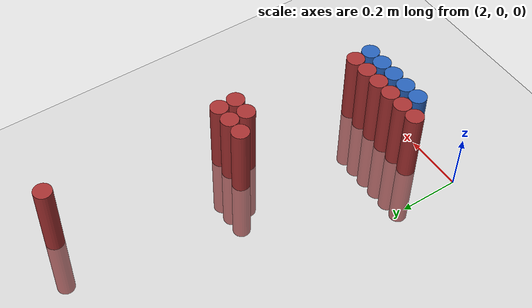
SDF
<sdf version="1.6">
 <world name="default">
  <model name="ground_plane">
   <static>1</static>
   <link name="link">
    <collision name="collision">
     <geometry><plane><normal>0 0 1</normal><size>100 100</size></plane></geometry>
     <surface><friction><ode><mu>100</mu><mu2>50</mu2></ode></friction></surface>
    </collision>
    <visual name="visual">
     <cast_shadows>0</cast_shadows>
     <geometry><plane><normal>0 0 1</normal><size>100 100</size></plane></geometry>
     <material>
      <script><uri>file://media/materials/scripts/gazebo.material</uri><name>Gazebo/Grey</name></script>
     </material>
    </visual>
   </link>
  </model>
  <model name="unit_cylinder_170">
   <static>1</static>
   <pose>2.490000 1.170000 0.000000 0.000000 0.000000 0.000000</pose>
   <link name="link">
    <inertial>
     <mass>1</mass>
     <inertia><ixx>0.145833</ixx><ixy>0</ixy><ixz>0</ixz><iyy>0.145833</iyy><iyz>0</iyz><izz>0.125</izz></inertia>
    </inertial>
    <collision name="collision">
     <geometry><cylinder><radius>0.030000</radius><length>0.5</length></cylinder></geometry>
    </collision>
    <visual name="visual">
     <geometry><cylinder><radius>0.030000</radius><length>0.5</length></cylinder></geometry>
     <material>
      <ambient>0.648000 0.192000 0.192000 1</ambient>
      <diffuse>0.648000 0.192000 0.192000 1</diffuse>
     </material>
     <material>
      <script><name>Gazebo/Grey</name><uri>file://media/materials/scripts/gazebo.material</uri></script>
     </material>
    </visual>
   </link>
  </model>
  <model name="unit_cylinder_187">
   <static>1</static>
   <pose>2.370000 0.570000 0.000000 0.000000 0.000000 0.000000</pose>
   <link name="link">
    <inertial>
     <mass>1</mass>
     <inertia><ixx>0.145833</ixx><ixy>0</ixy><ixz>0</ixz><iyy>0.145833</iyy><iyz>0</iyz><izz>0.125</izz></inertia>
    </inertial>
    <collision name="collision">
     <geometry><cylinder><radius>0.030000</radius><length>0.5</length></cylinder></geometry>
    </collision>
    <visual name="visual">
     <geometry><cylinder><radius>0.030000</radius><length>0.5</length></cylinder></geometry>
     <material>
      <ambient>0.648000 0.192000 0.192000 1</ambient>
      <diffuse>0.648000 0.192000 0.192000 1</diffuse>
     </material>
     <material>
      <script><name>Gazebo/Grey</name><uri>file://media/materials/scripts/gazebo.material</uri></script>
     </material>
    </visual>
   </link>
  </model>
  <model name="unit_cylinder_188">
   <static>1</static>
   <pose>2.430000 0.570000 0.000000 0.000000 0.000000 0.000000</pose>
   <link name="link">
    <inertial>
     <mass>1</mass>
     <inertia><ixx>0.145833</ixx><ixy>0</ixy><ixz>0</ixz><iyy>0.145833</iyy><iyz>0</iyz><izz>0.125</izz></inertia>
    </inertial>
    <collision name="collision">
     <geometry><cylinder><radius>0.030000</radius><length>0.5</length></cylinder></geometry>
    </collision>
    <visual name="visual">
     <geometry><cylinder><radius>0.030000</radius><length>0.5</length></cylinder></geometry>
     <material>
      <ambient>0.648000 0.192000 0.192000 1</ambient>
      <diffuse>0.648000 0.192000 0.192000 1</diffuse>
     </material>
     <material>
      <script><name>Gazebo/Grey</name><uri>file://media/materials/scripts/gazebo.material</uri></script>
     </material>
    </visual>
   </link>
  </model>
  <model name="unit_cylinder_189">
   <static>1</static>
   <pose>2.490000 0.570000 0.000000 0.000000 0.000000 0.000000</pose>
   <link name="link">
    <inertial>
     <mass>1</mass>
     <inertia><ixx>0.145833</ixx><ixy>0</ixy><ixz>0</ixz><iyy>0.145833</iyy><iyz>0</iyz><izz>0.125</izz></inertia>
    </inertial>
    <collision name="collision">
     <geometry><cylinder><radius>0.030000</radius><length>0.5</length></cylinder></geometry>
    </collision>
    <visual name="visual">
     <geometry><cylinder><radius>0.030000</radius><length>0.5</length></cylinder></geometry>
     <material>
      <ambient>0.648000 0.192000 0.192000 1</ambient>
      <diffuse>0.648000 0.192000 0.192000 1</diffuse>
     </material>
     <material>
      <script><name>Gazebo/Grey</name><uri>file://media/materials/scripts/gazebo.material</uri></script>
     </material>
    </visual>
   </link>
  </model>
  <model name="unit_cylinder_193">
   <static>1</static>
   <pose>2.430000 0.510000 0.000000 0.000000 0.000000 0.000000</pose>
   <link name="link">
    <inertial>
     <mass>1</mass>
     <inertia><ixx>0.145833</ixx><ixy>0</ixy><ixz>0</ixz><iyy>0.145833</iyy><iyz>0</iyz><izz>0.125</izz></inertia>
    </inertial>
    <collision name="collision">
     <geometry><cylinder><radius>0.030000</radius><length>0.5</length></cylinder></geometry>
    </collision>
    <visual name="visual">
     <geometry><cylinder><radius>0.030000</radius><length>0.5</length></cylinder></geometry>
     <material>
      <ambient>0.648000 0.192000 0.192000 1</ambient>
      <diffuse>0.648000 0.192000 0.192000 1</diffuse>
     </material>
     <material>
      <script><name>Gazebo/Grey</name><uri>file://media/materials/scripts/gazebo.material</uri></script>
     </material>
    </visual>
   </link>
  </model>
  <model name="unit_cylinder_194">
   <static>1</static>
   <pose>2.490000 0.510000 0.000000 0.000000 0.000000 0.000000</pose>
   <link name="link">
    <inertial>
     <mass>1</mass>
     <inertia><ixx>0.145833</ixx><ixy>0</ixy><ixz>0</ixz><iyy>0.145833</iyy><iyz>0</iyz><izz>0.125</izz></inertia>
    </inertial>
    <collision name="collision">
     <geometry><cylinder><radius>0.030000</radius><length>0.5</length></cylinder></geometry>
    </collision>
    <visual name="visual">
     <geometry><cylinder><radius>0.030000</radius><length>0.5</length></cylinder></geometry>
     <material>
      <ambient>0.648000 0.192000 0.192000 1</ambient>
      <diffuse>0.648000 0.192000 0.192000 1</diffuse>
     </material>
     <material>
      <script><name>Gazebo/Grey</name><uri>file://media/materials/scripts/gazebo.material</uri></script>
     </material>
    </visual>
   </link>
  </model>
  <model name="unit_cylinder_214">
   <static>1</static>
   <pose>2.130000 0.090000 0.000000 0.000000 0.000000 0.000000</pose>
   <link name="link">
    <inertial>
     <mass>1</mass>
     <inertia><ixx>0.145833</ixx><ixy>0</ixy><ixz>0</ixz><iyy>0.145833</iyy><iyz>0</iyz><izz>0.125</izz></inertia>
    </inertial>
    <collision name="collision">
     <geometry><cylinder><radius>0.030000</radius><length>0.5</length></cylinder></geometry>
    </collision>
    <visual name="visual">
     <geometry><cylinder><radius>0.030000</radius><length>0.5</length></cylinder></geometry>
     <material>
      <ambient>0.648000 0.192000 0.192000 1</ambient>
      <diffuse>0.648000 0.192000 0.192000 1</diffuse>
     </material>
     <material>
      <script><name>Gazebo/Grey</name><uri>file://media/materials/scripts/gazebo.material</uri></script>
     </material>
    </visual>
   </link>
  </model>
  <model name="unit_cylinder_215">
   <static>1</static>
   <pose>2.190000 0.090000 0.000000 0.000000 0.000000 0.000000</pose>
   <link name="link">
    <inertial>
     <mass>1</mass>
     <inertia><ixx>0.145833</ixx><ixy>0</ixy><ixz>0</ixz><iyy>0.145833</iyy><iyz>0</iyz><izz>0.125</izz></inertia>
    </inertial>
    <collision name="collision">
     <geometry><cylinder><radius>0.030000</radius><length>0.5</length></cylinder></geometry>
    </collision>
    <visual name="visual">
     <geometry><cylinder><radius>0.030000</radius><length>0.5</length></cylinder></geometry>
     <material>
      <ambient>0.648000 0.192000 0.192000 1</ambient>
      <diffuse>0.648000 0.192000 0.192000 1</diffuse>
     </material>
     <material>
      <script><name>Gazebo/Grey</name><uri>file://media/materials/scripts/gazebo.material</uri></script>
     </material>
    </visual>
   </link>
  </model>
  <model name="unit_cylinder_216">
   <static>1</static>
   <pose>2.250000 0.090000 0.000000 0.000000 0.000000 0.000000</pose>
   <link name="link">
    <inertial>
     <mass>1</mass>
     <inertia><ixx>0.145833</ixx><ixy>0</ixy><ixz>0</ixz><iyy>0.145833</iyy><iyz>0</iyz><izz>0.125</izz></inertia>
    </inertial>
    <collision name="collision">
     <geometry><cylinder><radius>0.030000</radius><length>0.5</length></cylinder></geometry>
    </collision>
    <visual name="visual">
     <geometry><cylinder><radius>0.030000</radius><length>0.5</length></cylinder></geometry>
     <material>
      <ambient>0.648000 0.192000 0.192000 1</ambient>
      <diffuse>0.648000 0.192000 0.192000 1</diffuse>
     </material>
     <material>
      <script><name>Gazebo/Grey</name><uri>file://media/materials/scripts/gazebo.material</uri></script>
     </material>
    </visual>
   </link>
  </model>
  <model name="unit_cylinder_217">
   <static>1</static>
   <pose>2.310000 0.090000 0.000000 0.000000 0.000000 0.000000</pose>
   <link name="link">
    <inertial>
     <mass>1</mass>
     <inertia><ixx>0.145833</ixx><ixy>0</ixy><ixz>0</ixz><iyy>0.145833</iyy><iyz>0</iyz><izz>0.125</izz></inertia>
    </inertial>
    <collision name="collision">
     <geometry><cylinder><radius>0.030000</radius><length>0.5</length></cylinder></geometry>
    </collision>
    <visual name="visual">
     <geometry><cylinder><radius>0.030000</radius><length>0.5</length></cylinder></geometry>
     <material>
      <ambient>0.648000 0.192000 0.192000 1</ambient>
      <diffuse>0.648000 0.192000 0.192000 1</diffuse>
     </material>
     <material>
      <script><name>Gazebo/Grey</name><uri>file://media/materials/scripts/gazebo.material</uri></script>
     </material>
    </visual>
   </link>
  </model>
  <model name="unit_cylinder_218">
   <static>1</static>
   <pose>2.370000 0.090000 0.000000 0.000000 0.000000 0.000000</pose>
   <link name="link">
    <inertial>
     <mass>1</mass>
     <inertia><ixx>0.145833</ixx><ixy>0</ixy><ixz>0</ixz><iyy>0.145833</iyy><iyz>0</iyz><izz>0.125</izz></inertia>
    </inertial>
    <collision name="collision">
     <geometry><cylinder><radius>0.030000</radius><length>0.5</length></cylinder></geometry>
    </collision>
    <visual name="visual">
     <geometry><cylinder><radius>0.030000</radius><length>0.5</length></cylinder></geometry>
     <material>
      <ambient>0.648000 0.192000 0.192000 1</ambient>
      <diffuse>0.648000 0.192000 0.192000 1</diffuse>
     </material>
     <material>
      <script><name>Gazebo/Grey</name><uri>file://media/materials/scripts/gazebo.material</uri></script>
     </material>
    </visual>
   </link>
  </model>
  <model name="unit_cylinder_219">
   <static>1</static>
   <pose>2.430000 0.090000 0.000000 0.000000 0.000000 0.000000</pose>
   <link name="link">
    <inertial>
     <mass>1</mass>
     <inertia><ixx>0.145833</ixx><ixy>0</ixy><ixz>0</ixz><iyy>0.145833</iyy><iyz>0</iyz><izz>0.125</izz></inertia>
    </inertial>
    <collision name="collision">
     <geometry><cylinder><radius>0.030000</radius><length>0.5</length></cylinder></geometry>
    </collision>
    <visual name="visual">
     <geometry><cylinder><radius>0.030000</radius><length>0.5</length></cylinder></geometry>
     <material>
      <ambient>0.648000 0.192000 0.192000 1</ambient>
      <diffuse>0.648000 0.192000 0.192000 1</diffuse>
     </material>
     <material>
      <script><name>Gazebo/Grey</name><uri>file://media/materials/scripts/gazebo.material</uri></script>
     </material>
    </visual>
   </link>
  </model>
  <model name="unit_cylinder_236">
   <static>1</static>
   <pose>2.190000 0.030000 0.000000 0.000000 0.000000 0.000000</pose>
   <link name="link">
    <inertial>
     <mass>1</mass>
     <inertia><ixx>0.145833</ixx><ixy>0</ixy><ixz>0</ixz><iyy>0.145833</iyy><iyz>0</iyz><izz>0.125</izz></inertia>
    </inertial>
    <collision name="collision">
     <geometry><cylinder><radius>0.030000</radius><length>0.5</length></cylinder></geometry>
    </collision>
    <visual name="visual">
     <geometry><cylinder><radius>0.030000</radius><length>0.5</length></cylinder></geometry>
     <material>
      <ambient>0.152000 0.379000 0.720000 1</ambient>
      <diffuse>0.152000 0.379000 0.720000 1</diffuse>
     </material>
     <material>
      <script><name>Gazebo/Grey</name><uri>file://media/materials/scripts/gazebo.material</uri></script>
     </material>
    </visual>
   </link>
  </model>
  <model name="unit_cylinder_237">
   <static>1</static>
   <pose>2.250000 0.030000 0.000000 0.000000 0.000000 0.000000</pose>
   <link name="link">
    <inertial>
     <mass>1</mass>
     <inertia><ixx>0.145833</ixx><ixy>0</ixy><ixz>0</ixz><iyy>0.145833</iyy><iyz>0</iyz><izz>0.125</izz></inertia>
    </inertial>
    <collision name="collision">
     <geometry><cylinder><radius>0.030000</radius><length>0.5</length></cylinder></geometry>
    </collision>
    <visual name="visual">
     <geometry><cylinder><radius>0.030000</radius><length>0.5</length></cylinder></geometry>
     <material>
      <ambient>0.152000 0.379000 0.720000 1</ambient>
      <diffuse>0.152000 0.379000 0.720000 1</diffuse>
     </material>
     <material>
      <script><name>Gazebo/Grey</name><uri>file://media/materials/scripts/gazebo.material</uri></script>
     </material>
    </visual>
   </link>
  </model>
  <model name="unit_cylinder_238">
   <static>1</static>
   <pose>2.310000 0.030000 0.000000 0.000000 0.000000 0.000000</pose>
   <link name="link">
    <inertial>
     <mass>1</mass>
     <inertia><ixx>0.145833</ixx><ixy>0</ixy><ixz>0</ixz><iyy>0.145833</iyy><iyz>0</iyz><izz>0.125</izz></inertia>
    </inertial>
    <collision name="collision">
     <geometry><cylinder><radius>0.030000</radius><length>0.5</length></cylinder></geometry>
    </collision>
    <visual name="visual">
     <geometry><cylinder><radius>0.030000</radius><length>0.5</length></cylinder></geometry>
     <material>
      <ambient>0.152000 0.379000 0.720000 1</ambient>
      <diffuse>0.152000 0.379000 0.720000 1</diffuse>
     </material>
     <material>
      <script><name>Gazebo/Grey</name><uri>file://media/materials/scripts/gazebo.material</uri></script>
     </material>
    </visual>
   </link>
  </model>
  <model name="unit_cylinder_239">
   <static>1</static>
   <pose>2.370000 0.030000 0.000000 0.000000 0.000000 0.000000</pose>
   <link name="link">
    <inertial>
     <mass>1</mass>
     <inertia><ixx>0.145833</ixx><ixy>0</ixy><ixz>0</ixz><iyy>0.145833</iyy><iyz>0</iyz><izz>0.125</izz></inertia>
    </inertial>
    <collision name="collision">
     <geometry><cylinder><radius>0.030000</radius><length>0.5</length></cylinder></geometry>
    </collision>
    <visual name="visual">
     <geometry><cylinder><radius>0.030000</radius><length>0.5</length></cylinder></geometry>
     <material>
      <ambient>0.152000 0.379000 0.720000 1</ambient>
      <diffuse>0.152000 0.379000 0.720000 1</diffuse>
     </material>
     <material>
      <script><name>Gazebo/Grey</name><uri>file://media/materials/scripts/gazebo.material</uri></script>
     </material>
    </visual>
   </link>
  </model>
  <model name="unit_cylinder_240">
   <static>1</static>
   <pose>2.430000 0.030000 0.000000 0.000000 0.000000 0.000000</pose>
   <link name="link">
    <inertial>
     <mass>1</mass>
     <inertia><ixx>0.145833</ixx><ixy>0</ixy><ixz>0</ixz><iyy>0.145833</iyy><iyz>0</iyz><izz>0.125</izz></inertia>
    </inertial>
    <collision name="collision">
     <geometry><cylinder><radius>0.030000</radius><length>0.5</length></cylinder></geometry>
    </collision>
    <visual name="visual">
     <geometry><cylinder><radius>0.030000</radius><length>0.5</length></cylinder></geometry>
     <material>
      <ambient>0.152000 0.379000 0.720000 1</ambient>
      <diffuse>0.152000 0.379000 0.720000 1</diffuse>
     </material>
     <material>
      <script><name>Gazebo/Grey</name><uri>file://media/materials/scripts/gazebo.material</uri></script>
     </material>
    </visual>
   </link>
  </model>
 </world>
</sdf>
